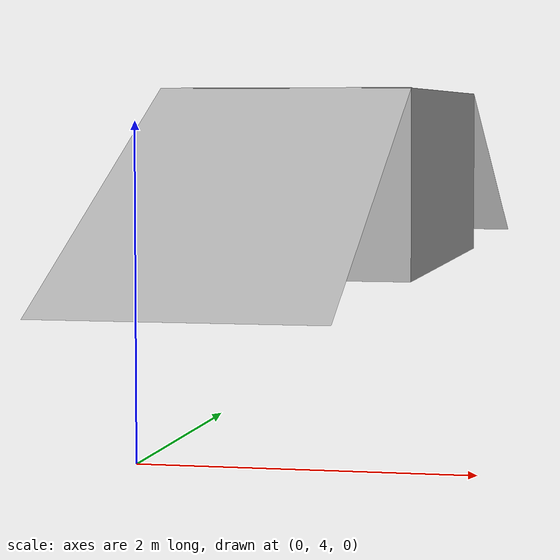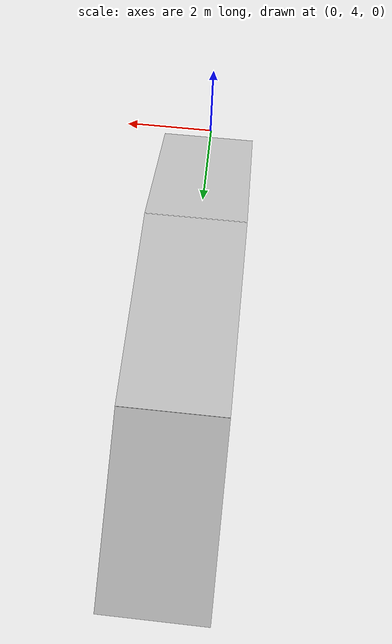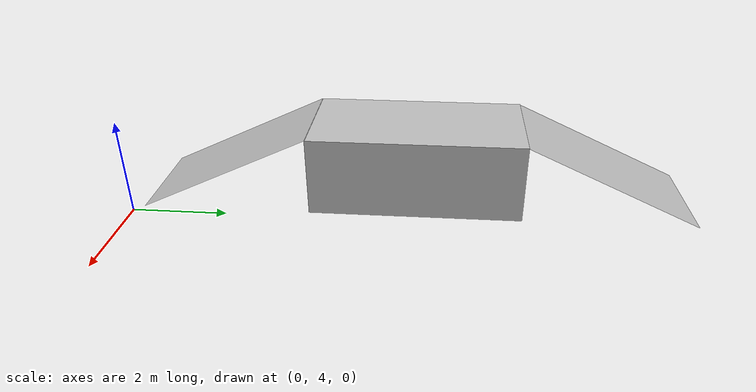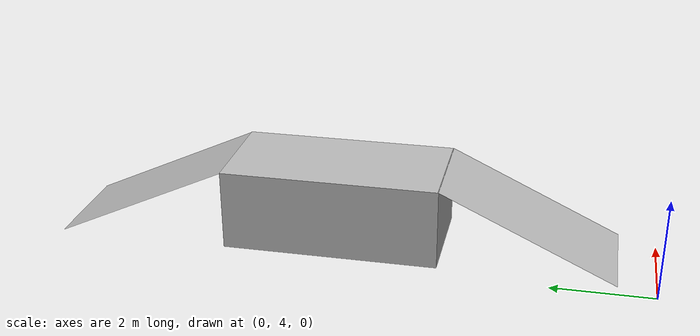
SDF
<?xml version="1.0" ?>
<sdf version="1.6">
  <model name="plataforma_rampas">

    <!-- Definición de los materiales -->
    <material name="azul">
      <color rgba="0.0 0.0 0.8 1"/>
    </material>

    <!-- Definición del cubo -->
    <link name="cubo">
      <pose>0 0 0.75 0 0 0</pose>
      <visual name="visual">
        <pose>0 10 0.75 0 0 0</pose>
        <geometry>
          <box>
            <size>2.0 4.0 1.5</size>
          </box>
        </geometry>
        <material>
          <script>
            <name>azul</name>
          </script>
        </material>
      </visual>
      <collision name="collision">
        <pose>0 10 0.75 0 0 0</pose>
        <geometry>
          <box>
            <size>2.0 4.0 1.5</size>
          </box>
        </geometry>
      </collision>
    </link>

    <!-- Definición de la rampa 1 -->
    <link name="rampa_1">
      <pose>0 0 0.75 0 0 0</pose>
      <visual name="visual">
        <pose>0 6.4075 0.75 0.439 0 0</pose>
        <geometry>
          <box>
            <size>2 3.55 0</size>
          </box>
        </geometry>
        <material>
          <script>
            <name>azul</name>
          </script>
        </material>
      </visual>
      <collision name="collision">
        <pose>0 6.4575 0.75 0.431711 0 0</pose>
        <geometry>
          <box>
            <size>2 3.55 0</size>
          </box>
        </geometry>
      </collision>
    </link>

    <!-- Definición de la rampa 2 -->
    <link name="rampa_2">
      <pose>0 0 0.75 0 0 0</pose>
      <visual name="visual">
        <pose>0 13.6075 0.75 -0.431711 0 0</pose>
        <geometry>
          <box>
            <size>2 3.55 0</size>
          </box>
        </geometry>
        <material>
          <script>
            <name>azul</name>
          </script>
        </material>
      </visual>
      <collision name="collision">
        <pose>0 13.6075 0.75 -0.431711 0 0</pose>
        <geometry>
          <box>
            <size>2 3.55 0</size>
          </box>
        </geometry>
      </collision>
    </link>

    <joint name="rampa_1_joint" type="fixed">
      <parent>cubo</parent>
      <child>rampa_1</child>
      <pose>0 0 0 0 0 0</pose>
    </joint>

    <joint name="rampa_2_joint" type="fixed">
      <parent>cubo</parent>
      <child>rampa_2</child>
      <pose>0 0 0 0 0 0</pose>
    </joint>

  </model>
</sdf>
